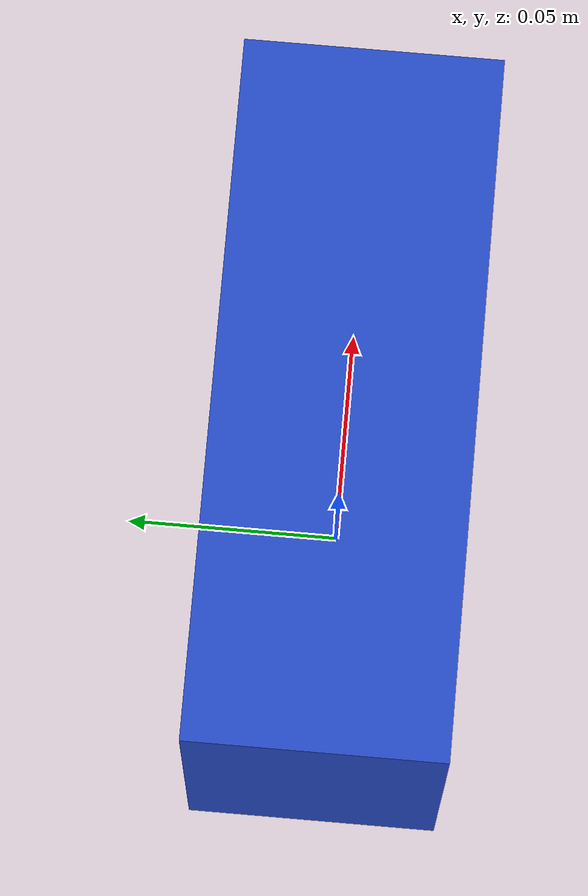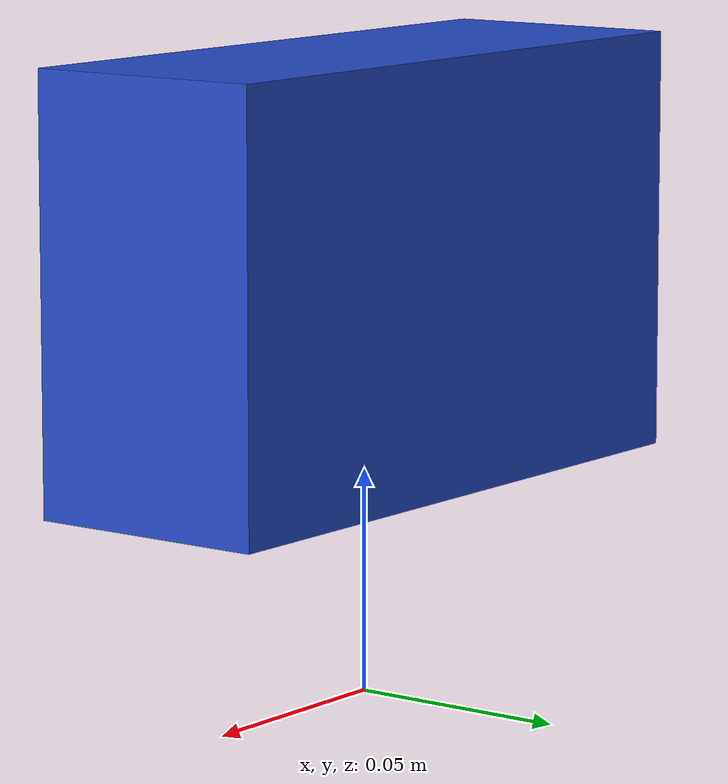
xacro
<?xml version="1.0"?>

<robot xmlns:xacro="http://www.ros.org/wiki/xacro">
    <xacro:property name="base_length" value="0.15"/>
    <xacro:property name="base_width" value="0.055"/>
    <xacro:property name="base_height" value="0.095"/>
    <xacro:property name="wheel_radius" value="${base_height / 2.0}"/>
    <xacro:property name="wheel_length" value="${wheel_radius / 2.0}"/>

    <xacro:macro name="wheel_link" params="side">
        <link name="${side}_wheel_link">
            <visual>
                <geometry>
                    <cylinder radius="${wheel_radius}" length="${wheel_length}" />
                </geometry>
                <origin xyz="0 0 0" rpy="${pi / 2.0} 0 0" />
                <material name="grey" />
            </visual>
            <collision>
                <geometry>
                    <cylinder radius="${wheel_radius}" length="${wheel_length}" />
                </geometry>
                <origin xyz="0 0 0" rpy="${pi / 2.0} 0 0" />
            </collision>
            <xacro:cylinder_inertia r="${2 * wheel_radius}" l="${2 * wheel_length}" m="1.0" xyz = "0 0 0" rpy = "${pi / 2.0} 0 0"/>
        </link>
    </xacro:macro>

    <link name="base_footprint" />

    <link name="base_link">
        <visual>
            <geometry>
                <box size="${base_length} ${base_width} ${base_height}" />
            </geometry>
            <origin xyz="0 0 ${base_height / 2.0}" rpy="0 0 0" />
            <material name="blue" />
        </visual>
        <collision>
            <geometry>
                <box size="${base_length} ${base_width} ${base_height}" />
            </geometry>
            <origin xyz="0 0 ${base_height / 2.0}" rpy="0 0 0" />
        </collision>
        <xacro:box_inertia l="${2 * base_length}" w="${2 * base_width}" h="${2 * base_height}" m="${5.0}" xyz = "0 0 ${2 * base_height / 2.0}" rpy = "0 0 0" />
    </link>

    <joint name="base_joint" type="fixed">
        <parent link="base_footprint" />
        <child link="base_link" />
        <origin xyz="0 0 ${base_height / 2.0}" rpy="0 0 0"/>
    </joint>
</robot>
